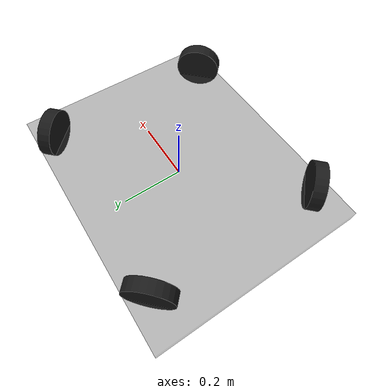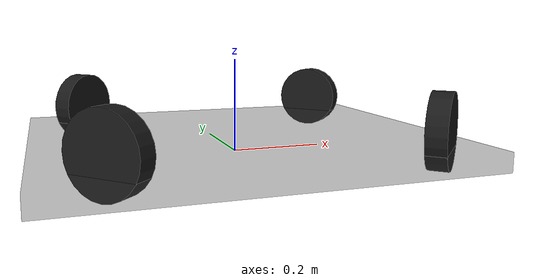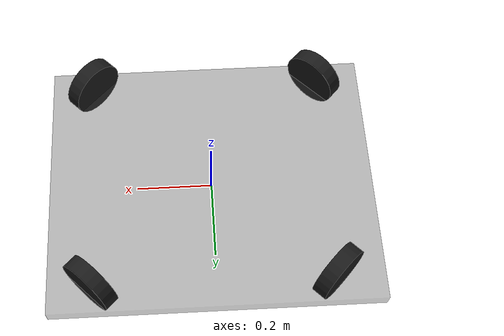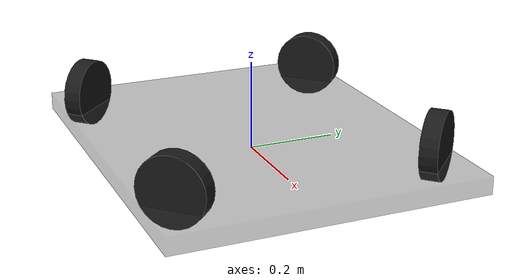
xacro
<?xml version="1.0"?>
<robot name="mecanum_robot" xmlns:xacro="http://ros.org/wiki/xacro">

  <!-- Parameters           -->

  <!-- Mecanum wheel -->
  <xacro:property name="wheel_radius" value="0.076"/>
  <xacro:property name="wheel_width"  value="0.040"/>

  <!-- Robot outer size -->
  <!-- Length: 860 mm -->
  <!-- Width : 702 mm -->
  <xacro:property name="robot_length" value="0.860"/>
  <xacro:property name="robot_width"  value="0.702"/>

  <!-- Wheel positions relative to robot center -->
  <!-- Front edge -> front wheel center : 116 mm -->
  <!-- Rear edge  -> rear wheel center  : 128 mm -->
  <!-- Left edge  -> left wheel center  : 65 mm -->
  <!-- Right edge -> right wheel center : 60 mm -->

  <xacro:property name="wheel_x_front" value="0.314"/>
  <xacro:property name="wheel_x_rear"  value="0.302"/>

  <xacro:property name="wheel_y_left"  value="0.286"/>
  <xacro:property name="wheel_y_right" value="0.291"/>

  <xacro:property name="color_alpha" value="1.0"/>

  <!-- Base link            -->

  <link name="base_link">
    <visual>
      <origin xyz="0 0 0.02" rpy="0 0 0"/>

      <geometry>
        <box size="${robot_length} ${robot_width} 0.04"/>
      </geometry>

      <material name="base_color">
        <color rgba="0.2 0.2 0.2 0.35"/>
      </material>
    </visual>
  </link>

  <!-- Mecanum wheel macro  -->

  <xacro:macro name="mecanum" params="wheel_name x y angle">

    <!-- Wheel base link -->
    <link name="${wheel_name}_base_link"/>

    <!-- Wheel base joint -->
    <joint name="${wheel_name}_base" type="fixed">
      <parent link="base_link"/>
      <child link="${wheel_name}_base_link"/>

      <origin
        xyz="${x} ${y} ${wheel_radius}"
        rpy="0 0 ${angle}"/>

      <axis xyz="0 0 1"/>
    </joint>

    <!-- Wheel link -->
    <link name="${wheel_name}_link">

      <visual>
        <geometry>
          <cylinder
            radius="${wheel_radius}"
            length="${wheel_width}"/>
        </geometry>

        <origin rpy="1.5708 0 0"/>

        <material name="black">
          <color rgba="0.1 0.1 0.1 ${color_alpha}"/>
        </material>
      </visual>

    </link>

    <!-- Wheel rotation joint -->
    <joint name="${wheel_name}" type="continuous">

      <parent link="${wheel_name}_base_link"/>
      <child link="${wheel_name}_link"/>

      <axis xyz="0 1 0"/>

    </joint>

  </xacro:macro>

  <!-- Mecanum instances    -->

  <!-- Front Left -->
  <xacro:mecanum
    wheel_name="mecanum_wheel_fl"
    x="${wheel_x_front}"
    y="${wheel_y_left}"
    angle="-0.7853981635"/>

  <!-- Front Right -->
  <xacro:mecanum
    wheel_name="mecanum_wheel_fr"
    x="${wheel_x_front}"
    y="-${wheel_y_right}"
    angle="0.7853981635"/>

  <!-- Rear Left -->
  <xacro:mecanum
    wheel_name="mecanum_wheel_rl"
    x="-${wheel_x_rear}"
    y="${wheel_y_left}"
    angle="0.7853981635"/>

  <!-- Rear Right -->
  <xacro:mecanum
    wheel_name="mecanum_wheel_rr"
    x="-${wheel_x_rear}"
    y="-${wheel_y_right}"
    angle="-0.7853981635"/>

  <!-- Lidar Front          -->

  <link name="lidar_front"/>

  <joint name="base_to_lidar_front" type="fixed">

    <parent link="base_link"/>
    <child link="lidar_front"/>

    <origin
      xyz="0.440 0 0"
      rpy="0 0 0"/>

  </joint>

  <!-- Lidar Rear           -->

  <link name="lidar_rear"/>

  <joint name="base_to_lidar_rear" type="fixed">

    <parent link="base_link"/>
    <child link="lidar_rear"/>

    <origin
      xyz="-0.440 0 0"
      rpy="0 0 3.1415926535"/>

  </joint>

</robot>
